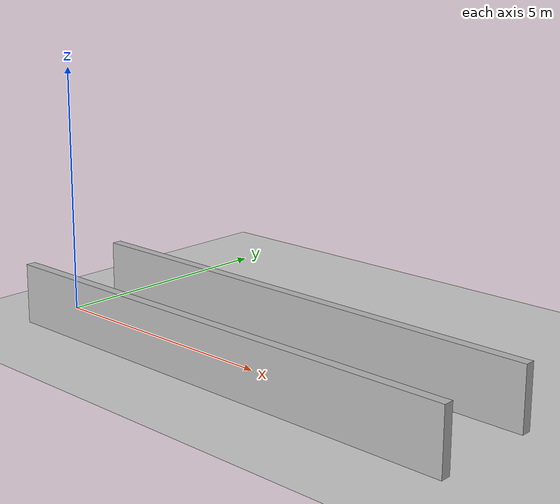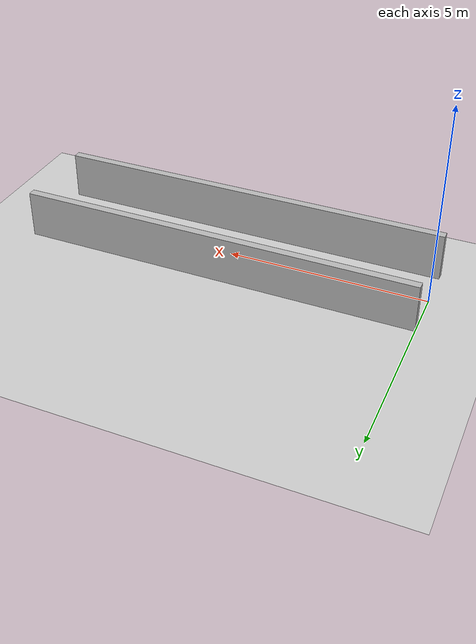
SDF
<?xml version="1.0"?>
<sdf version="1.6">
  <world name="v2-04g-corridor-s4912">
    <gravity>0 0 -9.81</gravity>
    <physics name="v2_deterministic" type="ode">
      <max_step_size>0.002</max_step_size>
      <real_time_update_rate>500</real_time_update_rate>
    </physics>
    <include>
      <uri>model://sun</uri>
    </include>
    <include>
      <uri>model://ground_plane</uri>
    </include>
    <model name="corridor-left">
      <static>true</static>
      <pose>5.009365844 1.086508358 0.600000000 0 0 -0.003659133</pose>
      <link name="link">
        <collision name="collision">
          <geometry>
            <box>
              <size>10.000000 0.200000 1.200000</size>
            </box>
          </geometry>
        </collision>
        <visual name="visual">
          <geometry>
            <box>
              <size>10.000000 0.200000 1.200000</size>
            </box>
          </geometry>
        </visual>
      </link>
    </model>
    <model name="corridor-right">
      <static>true</static>
      <pose>4.996456339 -1.101819150 0.600000000 0 0 -0.001484693</pose>
      <link name="link">
        <collision name="collision">
          <geometry>
            <box>
              <size>10.000000 0.200000 1.200000</size>
            </box>
          </geometry>
        </collision>
        <visual name="visual">
          <geometry>
            <box>
              <size>10.000000 0.200000 1.200000</size>
            </box>
          </geometry>
        </visual>
      </link>
    </model>
  </world>
</sdf>
